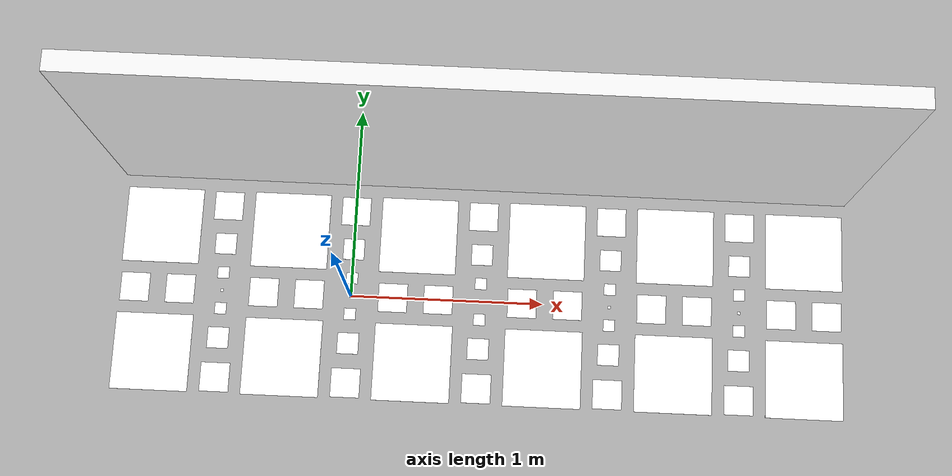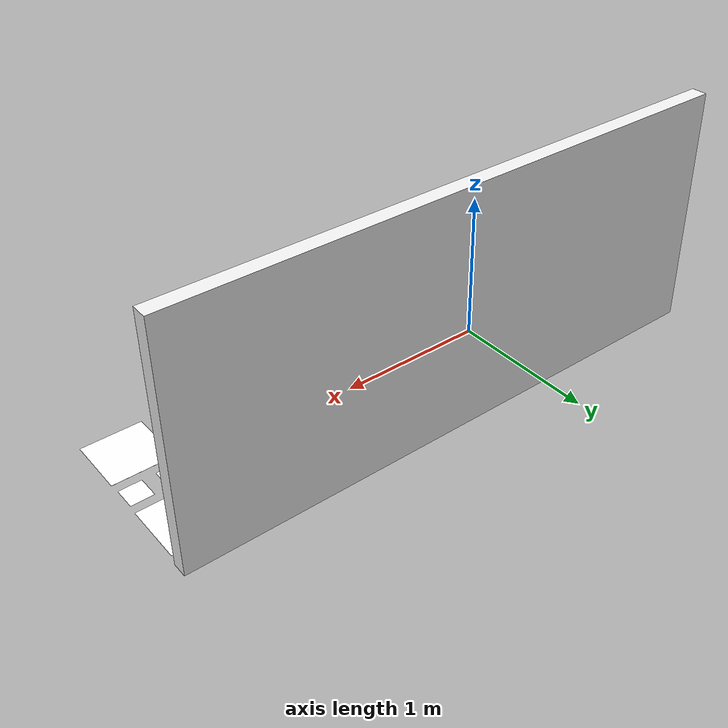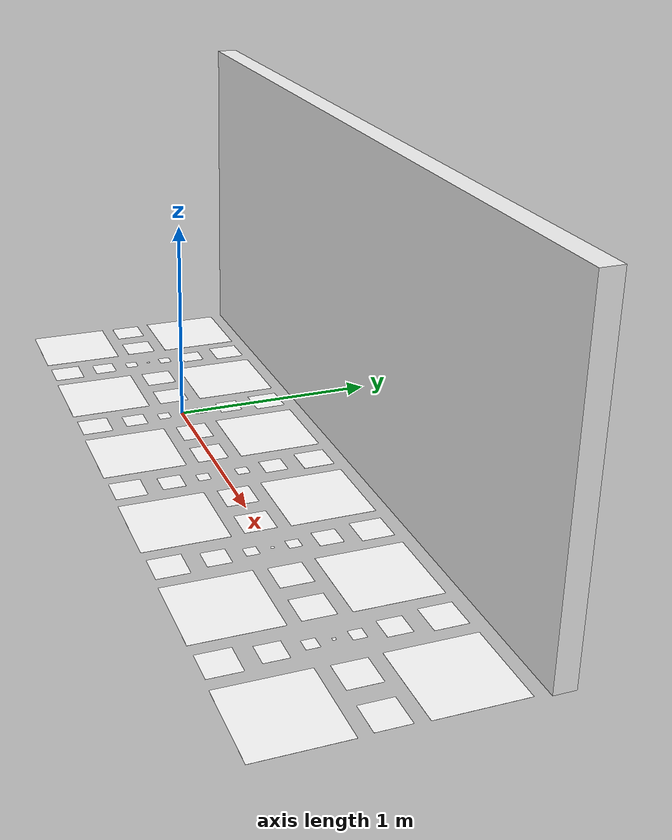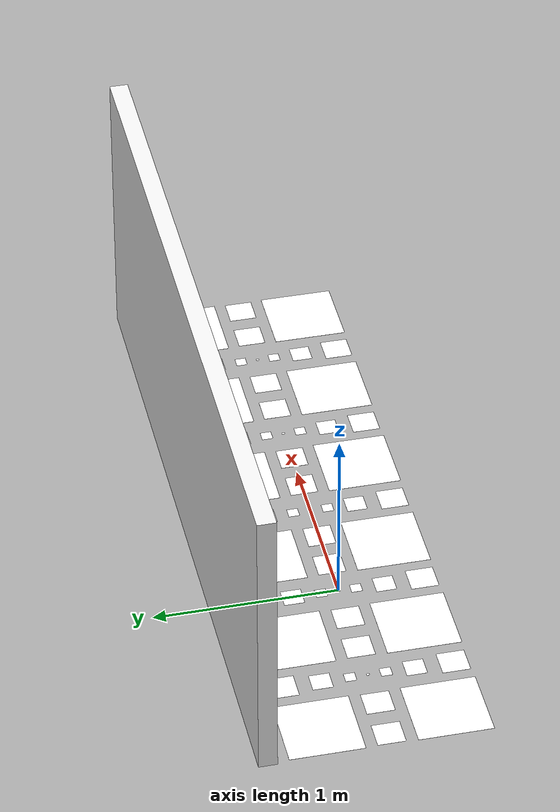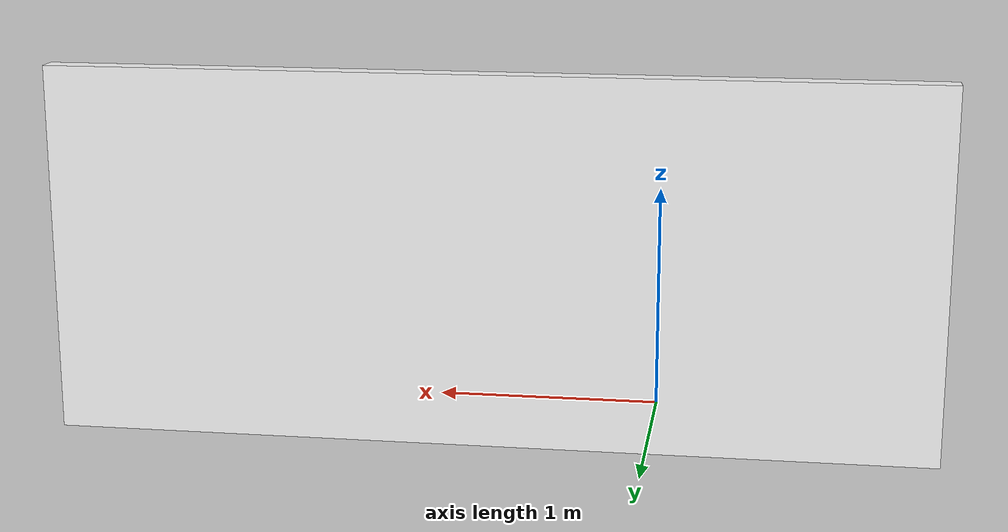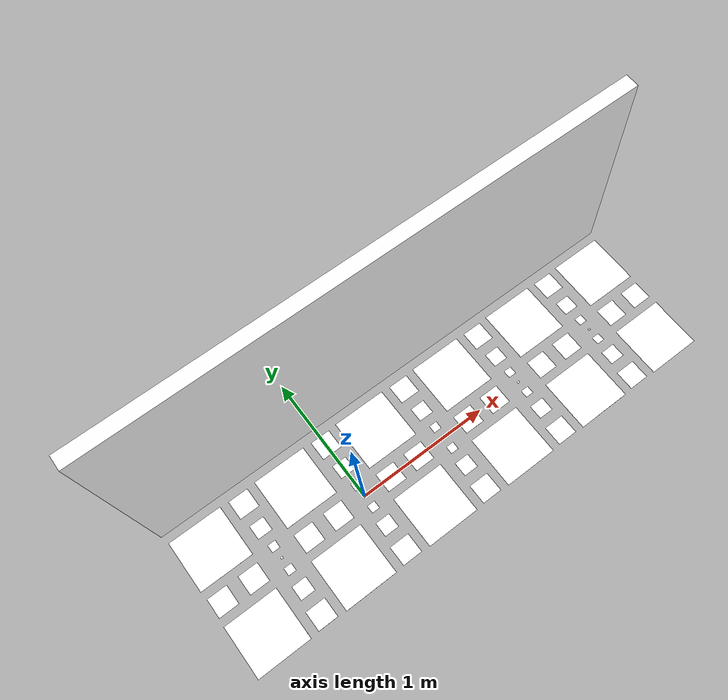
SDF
<sdf version="1.9">
 <world name="obrik_aruco_graffiti_wall">
  <plugin name="gz::sim::systems::Physics" filename="gz-sim-physics-system"/>
  <plugin name="gz::sim::systems::UserCommands" filename="gz-sim-user-commands-system"/>
  <plugin name="gz::sim::systems::SceneBroadcaster" filename="gz-sim-scene-broadcaster-system"/>
  <plugin name="gz::sim::systems::Contact" filename="gz-sim-contact-system"/>
  <plugin name="gz::sim::systems::Imu" filename="gz-sim-imu-system"/>
  <plugin name="gz::sim::systems::AirPressure" filename="gz-sim-air-pressure-system"/>
  <plugin name="gz::sim::systems::Magnetometer" filename="gz-sim-magnetometer-system"/>
  <plugin name="gz::sim::systems::ApplyLinkWrench" filename="gz-sim-apply-link-wrench-system"/>
  <plugin name="gz::sim::systems::NavSat" filename="gz-sim-navsat-system"/>
  <plugin name="gz::sim::systems::Sensors" filename="gz-sim-sensors-system">
   <render_engine>ogre2</render_engine>
  </plugin>
  <physics type="dart">
   <max_step_size>0.004</max_step_size>
   <real_time_factor>1.0</real_time_factor>
   <real_time_update_rate>250</real_time_update_rate>
   <dart><collision_detector>bullet</collision_detector></dart>
  </physics>
  <gravity>0 0 -9.8</gravity>
  <magnetic_field>6e-06 2.3e-05 -4.2e-05</magnetic_field>
  <atmosphere type="adiabatic"/>
  <scene>
   <grid>false</grid>
   <ambient>0.4 0.4 0.4 1</ambient>
   <background>0.7 0.7 0.7 1</background>
   <shadows>false</shadows>
  </scene>
  <light name="sunUTC" type="directional">
   <pose>0 0 500 0 0 0</pose>
   <cast_shadows>false</cast_shadows>
   <intensity>1.0</intensity>
   <direction>0.001 0.625 -0.78</direction>
   <diffuse>1 1 1 1</diffuse>
   <specular>0.271 0.271 0.271 1</specular>
   <attenuation><range>2000</range><linear>0</linear><constant>1</constant><quadratic>0</quadratic></attenuation>
   <spot><inner_angle>0</inner_angle><outer_angle>0</outer_angle><falloff>0</falloff></spot>
  </light>
  <spherical_coordinates>
   <surface_model>EARTH_WGS84</surface_model>
   <world_frame_orientation>ENU</world_frame_orientation>
   <latitude_deg>47.397971057728974</latitude_deg>
   <longitude_deg>8.546163739800146</longitude_deg>
   <elevation>0</elevation>
  </spherical_coordinates>
  <include><uri>model://obrik_aruco_map_4x4</uri></include>
  <model name="graffiti_paint_wall">
   <static>true</static>
   <pose>0.6734 0.65 0.80 0 0 0</pose>
   <link name="link">
    <collision name="collision"><geometry><box><size>3.8 0.1 1.6</size></box></geometry></collision>
    <visual name="visual">
     <cast_shadows>false</cast_shadows>
     <geometry><box><size>3.8 0.1 1.6</size></box></geometry>
     <material>
      <ambient>0.95 0.95 0.95 1</ambient>
      <diffuse>0.95 0.95 0.95 1</diffuse>
      <specular>0.05 0.05 0.05 1</specular>
     </material>
    </visual>
   </link>
  </model>
 </world>
</sdf>

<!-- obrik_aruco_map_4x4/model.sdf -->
<sdf version="1.9">
  <model name="obrik_aruco_map_4x4">
    <static>true</static>
    <link name="link">
        <visual name="marker_1">
          <pose>0.336700 0.336700 0.001000 0.000000 -0.000000 0.000000</pose>
          <cast_shadows>false</cast_shadows>
          <geometry>
            <plane>
              <normal>0 0 1</normal>
              <size>0.400000 0.400000</size>
            </plane>
          </geometry>
          <material>
            <diffuse>1 1 1 1</diffuse>
            <specular>0.1 0.1 0.1 1</specular>
            <pbr>
              <metal>
                <albedo_map>model://obrik_aruco_map_4x4/materials/textures/aruco_1.png</albedo_map>
                <emissive_map>model://obrik_aruco_map_4x4/materials/textures/aruco_1.png</emissive_map>
              </metal>
            </pbr>
          </material>
        </visual>
        <visual name="marker_2">
          <pose>-0.336700 -0.336700 0.001000 0.000000 -0.000000 0.000000</pose>
          <cast_shadows>false</cast_shadows>
          <geometry>
            <plane>
              <normal>0 0 1</normal>
              <size>0.400000 0.400000</size>
            </plane>
          </geometry>
          <material>
            <diffuse>1 1 1 1</diffuse>
            <specular>0.1 0.1 0.1 1</specular>
            <pbr>
              <metal>
                <albedo_map>model://obrik_aruco_map_4x4/materials/textures/aruco_2.png</albedo_map>
                <emissive_map>model://obrik_aruco_map_4x4/materials/textures/aruco_2.png</emissive_map>
              </metal>
            </pbr>
          </material>
        </visual>
        <visual name="marker_3">
          <pose>-0.336700 0.336700 0.001000 0.000000 -0.000000 0.000000</pose>
          <cast_shadows>false</cast_shadows>
          <geometry>
            <plane>
              <normal>0 0 1</normal>
              <size>0.400000 0.400000</size>
            </plane>
          </geometry>
          <material>
            <diffuse>1 1 1 1</diffuse>
            <specular>0.1 0.1 0.1 1</specular>
            <pbr>
              <metal>
                <albedo_map>model://obrik_aruco_map_4x4/materials/textures/aruco_3.png</albedo_map>
                <emissive_map>model://obrik_aruco_map_4x4/materials/textures/aruco_3.png</emissive_map>
              </metal>
            </pbr>
          </material>
        </visual>
        <visual name="marker_4">
          <pose>0.336700 -0.336700 0.001000 0.000000 -0.000000 0.000000</pose>
          <cast_shadows>false</cast_shadows>
          <geometry>
            <plane>
              <normal>0 0 1</normal>
              <size>0.400000 0.400000</size>
            </plane>
          </geometry>
          <material>
            <diffuse>1 1 1 1</diffuse>
            <specular>0.1 0.1 0.1 1</specular>
            <pbr>
              <metal>
                <albedo_map>model://obrik_aruco_map_4x4/materials/textures/aruco_4.png</albedo_map>
                <emissive_map>model://obrik_aruco_map_4x4/materials/textures/aruco_4.png</emissive_map>
              </metal>
            </pbr>
          </material>
        </visual>
        <visual name="marker_5">
          <pose>0.000000 0.095100 0.001000 0.000000 -0.000000 0.000000</pose>
          <cast_shadows>false</cast_shadows>
          <geometry>
            <plane>
              <normal>0 0 1</normal>
              <size>0.060000 0.060000</size>
            </plane>
          </geometry>
          <material>
            <diffuse>1 1 1 1</diffuse>
            <specular>0.1 0.1 0.1 1</specular>
            <pbr>
              <metal>
                <albedo_map>model://obrik_aruco_map_4x4/materials/textures/aruco_5.png</albedo_map>
                <emissive_map>model://obrik_aruco_map_4x4/materials/textures/aruco_5.png</emissive_map>
              </metal>
            </pbr>
          </material>
        </visual>
        <visual name="marker_6">
          <pose>0.000000 -0.095100 0.001000 0.000000 -0.000000 0.000000</pose>
          <cast_shadows>false</cast_shadows>
          <geometry>
            <plane>
              <normal>0 0 1</normal>
              <size>0.060000 0.060000</size>
            </plane>
          </geometry>
          <material>
            <diffuse>1 1 1 1</diffuse>
            <specular>0.1 0.1 0.1 1</specular>
            <pbr>
              <metal>
                <albedo_map>model://obrik_aruco_map_4x4/materials/textures/aruco_6.png</albedo_map>
                <emissive_map>model://obrik_aruco_map_4x4/materials/textures/aruco_6.png</emissive_map>
              </metal>
            </pbr>
          </material>
        </visual>
        <visual name="marker_7">
          <pose>0.000000 0.249500 0.001000 0.000000 -0.000000 0.000000</pose>
          <cast_shadows>false</cast_shadows>
          <geometry>
            <plane>
              <normal>0 0 1</normal>
              <size>0.110000 0.110000</size>
            </plane>
          </geometry>
          <material>
            <diffuse>1 1 1 1</diffuse>
            <specular>0.1 0.1 0.1 1</specular>
            <pbr>
              <metal>
                <albedo_map>model://obrik_aruco_map_4x4/materials/textures/aruco_7.png</albedo_map>
                <emissive_map>model://obrik_aruco_map_4x4/materials/textures/aruco_7.png</emissive_map>
              </metal>
            </pbr>
          </material>
        </visual>
        <visual name="marker_8">
          <pose>0.000000 -0.249500 0.001000 0.000000 -0.000000 0.000000</pose>
          <cast_shadows>false</cast_shadows>
          <geometry>
            <plane>
              <normal>0 0 1</normal>
              <size>0.110000 0.110000</size>
            </plane>
          </geometry>
          <material>
            <diffuse>1 1 1 1</diffuse>
            <specular>0.1 0.1 0.1 1</specular>
            <pbr>
              <metal>
                <albedo_map>model://obrik_aruco_map_4x4/materials/textures/aruco_8.png</albedo_map>
                <emissive_map>model://obrik_aruco_map_4x4/materials/textures/aruco_8.png</emissive_map>
              </metal>
            </pbr>
          </material>
        </visual>
        <visual name="marker_9">
          <pose>0.000000 0.455000 0.001000 0.000000 -0.000000 0.000000</pose>
          <cast_shadows>false</cast_shadows>
          <geometry>
            <plane>
              <normal>0 0 1</normal>
              <size>0.150000 0.150000</size>
            </plane>
          </geometry>
          <material>
            <diffuse>1 1 1 1</diffuse>
            <specular>0.1 0.1 0.1 1</specular>
            <pbr>
              <metal>
                <albedo_map>model://obrik_aruco_map_4x4/materials/textures/aruco_9.png</albedo_map>
                <emissive_map>model://obrik_aruco_map_4x4/materials/textures/aruco_9.png</emissive_map>
              </metal>
            </pbr>
          </material>
        </visual>
        <visual name="marker_10">
          <pose>0.000000 -0.455000 0.001000 0.000000 -0.000000 0.000000</pose>
          <cast_shadows>false</cast_shadows>
          <geometry>
            <plane>
              <normal>0 0 1</normal>
              <size>0.150000 0.150000</size>
            </plane>
          </geometry>
          <material>
            <diffuse>1 1 1 1</diffuse>
            <specular>0.1 0.1 0.1 1</specular>
            <pbr>
              <metal>
                <albedo_map>model://obrik_aruco_map_4x4/materials/textures/aruco_10.png</albedo_map>
                <emissive_map>model://obrik_aruco_map_4x4/materials/textures/aruco_10.png</emissive_map>
              </metal>
            </pbr>
          </material>
        </visual>
        <visual name="marker_11">
          <pose>0.455000 0.000000 0.001000 0.000000 -0.000000 0.000000</pose>
          <cast_shadows>false</cast_shadows>
          <geometry>
            <plane>
              <normal>0 0 1</normal>
              <size>0.150000 0.150000</size>
            </plane>
          </geometry>
          <material>
            <diffuse>1 1 1 1</diffuse>
            <specular>0.1 0.1 0.1 1</specular>
            <pbr>
              <metal>
                <albedo_map>model://obrik_aruco_map_4x4/materials/textures/aruco_11.png</albedo_map>
                <emissive_map>model://obrik_aruco_map_4x4/materials/textures/aruco_11.png</emissive_map>
              </metal>
            </pbr>
          </material>
        </visual>
        <visual name="marker_12">
          <pose>0.218400 0.000000 0.001000 0.000000 -0.000000 0.000000</pose>
          <cast_shadows>false</cast_shadows>
          <geometry>
            <plane>
              <normal>0 0 1</normal>
              <size>0.150000 0.150000</size>
            </plane>
          </geometry>
          <material>
            <diffuse>1 1 1 1</diffuse>
            <specular>0.1 0.1 0.1 1</specular>
            <pbr>
              <metal>
                <albedo_map>model://obrik_aruco_map_4x4/materials/textures/aruco_12.png</albedo_map>
                <emissive_map>model://obrik_aruco_map_4x4/materials/textures/aruco_12.png</emissive_map>
              </metal>
            </pbr>
          </material>
        </visual>
        <visual name="marker_13">
          <pose>-0.455000 0.000000 0.001000 0.000000 -0.000000 0.000000</pose>
          <cast_shadows>false</cast_shadows>
          <geometry>
            <plane>
              <normal>0 0 1</normal>
              <size>0.150000 0.150000</size>
            </plane>
          </geometry>
          <material>
            <diffuse>1 1 1 1</diffuse>
            <specular>0.1 0.1 0.1 1</specular>
            <pbr>
              <metal>
                <albedo_map>model://obrik_aruco_map_4x4/materials/textures/aruco_13.png</albedo_map>
                <emissive_map>model://obrik_aruco_map_4x4/materials/textures/aruco_13.png</emissive_map>
              </metal>
            </pbr>
          </material>
        </visual>
        <visual name="marker_14">
          <pose>-0.218400 0.000000 0.001000 0.000000 -0.000000 0.000000</pose>
          <cast_shadows>false</cast_shadows>
          <geometry>
            <plane>
              <normal>0 0 1</normal>
              <size>0.150000 0.150000</size>
            </plane>
          </geometry>
          <material>
            <diffuse>1 1 1 1</diffuse>
            <specular>0.1 0.1 0.1 1</specular>
            <pbr>
              <metal>
                <albedo_map>model://obrik_aruco_map_4x4/materials/textures/aruco_14.png</albedo_map>
                <emissive_map>model://obrik_aruco_map_4x4/materials/textures/aruco_14.png</emissive_map>
              </metal>
            </pbr>
          </material>
        </visual>
        <visual name="marker_15">
          <pose>0.000000 0.000000 0.001000 0.000000 -0.000000 0.000000</pose>
          <cast_shadows>false</cast_shadows>
          <geometry>
            <plane>
              <normal>0 0 1</normal>
              <size>0.015000 0.015000</size>
            </plane>
          </geometry>
          <material>
            <diffuse>1 1 1 1</diffuse>
            <specular>0.1 0.1 0.1 1</specular>
            <pbr>
              <metal>
                <albedo_map>model://obrik_aruco_map_4x4/materials/textures/aruco_15.png</albedo_map>
                <emissive_map>model://obrik_aruco_map_4x4/materials/textures/aruco_15.png</emissive_map>
              </metal>
            </pbr>
          </material>
        </visual>
        <visual name="marker_16">
          <pose>1.010100 0.336700 0.001000 0.000000 -0.000000 0.000000</pose>
          <cast_shadows>false</cast_shadows>
          <geometry>
            <plane>
              <normal>0 0 1</normal>
              <size>0.400000 0.400000</size>
            </plane>
          </geometry>
          <material>
            <diffuse>1 1 1 1</diffuse>
            <specular>0.1 0.1 0.1 1</specular>
            <pbr>
              <metal>
                <albedo_map>model://obrik_aruco_map_4x4/materials/textures/aruco_16.png</albedo_map>
                <emissive_map>model://obrik_aruco_map_4x4/materials/textures/aruco_16.png</emissive_map>
              </metal>
            </pbr>
          </material>
        </visual>
        <visual name="marker_18">
          <pose>1.010100 -0.336700 0.001000 0.000000 -0.000000 0.000000</pose>
          <cast_shadows>false</cast_shadows>
          <geometry>
            <plane>
              <normal>0 0 1</normal>
              <size>0.400000 0.400000</size>
            </plane>
          </geometry>
          <material>
            <diffuse>1 1 1 1</diffuse>
            <specular>0.1 0.1 0.1 1</specular>
            <pbr>
              <metal>
                <albedo_map>model://obrik_aruco_map_4x4/materials/textures/aruco_18.png</albedo_map>
                <emissive_map>model://obrik_aruco_map_4x4/materials/textures/aruco_18.png</emissive_map>
              </metal>
            </pbr>
          </material>
        </visual>
        <visual name="marker_20">
          <pose>0.673400 0.095100 0.001000 0.000000 -0.000000 0.000000</pose>
          <cast_shadows>false</cast_shadows>
          <geometry>
            <plane>
              <normal>0 0 1</normal>
              <size>0.060000 0.060000</size>
            </plane>
          </geometry>
          <material>
            <diffuse>1 1 1 1</diffuse>
            <specular>0.1 0.1 0.1 1</specular>
            <pbr>
              <metal>
                <albedo_map>model://obrik_aruco_map_4x4/materials/textures/aruco_20.png</albedo_map>
                <emissive_map>model://obrik_aruco_map_4x4/materials/textures/aruco_20.png</emissive_map>
              </metal>
            </pbr>
          </material>
        </visual>
        <visual name="marker_21">
          <pose>0.673400 -0.095100 0.001000 0.000000 -0.000000 0.000000</pose>
          <cast_shadows>false</cast_shadows>
          <geometry>
            <plane>
              <normal>0 0 1</normal>
              <size>0.060000 0.060000</size>
            </plane>
          </geometry>
          <material>
            <diffuse>1 1 1 1</diffuse>
            <specular>0.1 0.1 0.1 1</specular>
            <pbr>
              <metal>
                <albedo_map>model://obrik_aruco_map_4x4/materials/textures/aruco_21.png</albedo_map>
                <emissive_map>model://obrik_aruco_map_4x4/materials/textures/aruco_21.png</emissive_map>
              </metal>
            </pbr>
          </material>
        </visual>
        <visual name="marker_22">
          <pose>0.673400 0.249500 0.001000 0.000000 -0.000000 0.000000</pose>
          <cast_shadows>false</cast_shadows>
          <geometry>
            <plane>
              <normal>0 0 1</normal>
              <size>0.110000 0.110000</size>
            </plane>
          </geometry>
          <material>
            <diffuse>1 1 1 1</diffuse>
            <specular>0.1 0.1 0.1 1</specular>
            <pbr>
              <metal>
                <albedo_map>model://obrik_aruco_map_4x4/materials/textures/aruco_22.png</albedo_map>
                <emissive_map>model://obrik_aruco_map_4x4/materials/textures/aruco_22.png</emissive_map>
              </metal>
            </pbr>
          </material>
        </visual>
        <visual name="marker_23">
          <pose>0.673400 -0.249500 0.001000 0.000000 -0.000000 0.000000</pose>
          <cast_shadows>false</cast_shadows>
          <geometry>
            <plane>
              <normal>0 0 1</normal>
              <size>0.110000 0.110000</size>
            </plane>
          </geometry>
          <material>
            <diffuse>1 1 1 1</diffuse>
            <specular>0.1 0.1 0.1 1</specular>
            <pbr>
              <metal>
                <albedo_map>model://obrik_aruco_map_4x4/materials/textures/aruco_23.png</albedo_map>
                <emissive_map>model://obrik_aruco_map_4x4/materials/textures/aruco_23.png</emissive_map>
              </metal>
            </pbr>
          </material>
        </visual>
        <visual name="marker_24">
          <pose>0.673400 0.455000 0.001000 0.000000 -0.000000 0.000000</pose>
          <cast_shadows>false</cast_shadows>
          <geometry>
            <plane>
              <normal>0 0 1</normal>
              <size>0.150000 0.150000</size>
            </plane>
          </geometry>
          <material>
            <diffuse>1 1 1 1</diffuse>
            <specular>0.1 0.1 0.1 1</specular>
            <pbr>
              <metal>
                <albedo_map>model://obrik_aruco_map_4x4/materials/textures/aruco_24.png</albedo_map>
                <emissive_map>model://obrik_aruco_map_4x4/materials/textures/aruco_24.png</emissive_map>
              </metal>
            </pbr>
          </material>
        </visual>
        <visual name="marker_25">
          <pose>0.673400 -0.455000 0.001000 0.000000 -0.000000 0.000000</pose>
          <cast_shadows>false</cast_shadows>
          <geometry>
            <plane>
              <normal>0 0 1</normal>
              <size>0.150000 0.150000</size>
            </plane>
          </geometry>
          <material>
            <diffuse>1 1 1 1</diffuse>
            <specular>0.1 0.1 0.1 1</specular>
            <pbr>
              <metal>
                <albedo_map>model://obrik_aruco_map_4x4/materials/textures/aruco_25.png</albedo_map>
                <emissive_map>model://obrik_aruco_map_4x4/materials/textures/aruco_25.png</emissive_map>
              </metal>
            </pbr>
          </material>
        </visual>
        <visual name="marker_26">
          <pose>1.128400 0.000000 0.001000 0.000000 -0.000000 0.000000</pose>
          <cast_shadows>false</cast_shadows>
          <geometry>
            <plane>
              <normal>0 0 1</normal>
              <size>0.150000 0.150000</size>
            </plane>
          </geometry>
          <material>
            <diffuse>1 1 1 1</diffuse>
            <specular>0.1 0.1 0.1 1</specular>
            <pbr>
              <metal>
                <albedo_map>model://obrik_aruco_map_4x4/materials/textures/aruco_26.png</albedo_map>
                <emissive_map>model://obrik_aruco_map_4x4/materials/textures/aruco_26.png</emissive_map>
              </metal>
            </pbr>
          </material>
        </visual>
        <visual name="marker_27">
          <pose>0.891800 0.000000 0.001000 0.000000 -0.000000 0.000000</pose>
          <cast_shadows>false</cast_shadows>
          <geometry>
            <plane>
              <normal>0 0 1</normal>
              <size>0.150000 0.150000</size>
            </plane>
          </geometry>
          <material>
            <diffuse>1 1 1 1</diffuse>
            <specular>0.1 0.1 0.1 1</specular>
            <pbr>
              <metal>
                <albedo_map>model://obrik_aruco_map_4x4/materials/textures/aruco_27.png</albedo_map>
                <emissive_map>model://obrik_aruco_map_4x4/materials/textures/aruco_27.png</emissive_map>
              </metal>
            </pbr>
          </material>
        </visual>
        <visual name="marker_28">
          <pose>0.673400 0.000000 0.001000 0.000000 -0.000000 0.000000</pose>
          <cast_shadows>false</cast_shadows>
          <geometry>
            <plane>
              <normal>0 0 1</normal>
              <size>0.015000 0.015000</size>
            </plane>
          </geometry>
          <material>
            <diffuse>1 1 1 1</diffuse>
            <specular>0.1 0.1 0.1 1</specular>
            <pbr>
              <metal>
                <albedo_map>model://obrik_aruco_map_4x4/materials/textures/aruco_28.png</albedo_map>
                <emissive_map>model://obrik_aruco_map_4x4/materials/textures/aruco_28.png</emissive_map>
              </metal>
            </pbr>
          </material>
        </visual>
        <visual name="marker_29">
          <pose>-1.010100 0.336700 0.001000 0.000000 -0.000000 0.000000</pose>
          <cast_shadows>false</cast_shadows>
          <geometry>
            <plane>
              <normal>0 0 1</normal>
              <size>0.400000 0.400000</size>
            </plane>
          </geometry>
          <material>
            <diffuse>1 1 1 1</diffuse>
            <specular>0.1 0.1 0.1 1</specular>
            <pbr>
              <metal>
                <albedo_map>model://obrik_aruco_map_4x4/materials/textures/aruco_29.png</albedo_map>
                <emissive_map>model://obrik_aruco_map_4x4/materials/textures/aruco_29.png</emissive_map>
              </metal>
            </pbr>
          </material>
        </visual>
        <visual name="marker_94">
          <pose>-1.010100 -0.336700 0.001000 0.000000 -0.000000 0.000000</pose>
          <cast_shadows>false</cast_shadows>
          <geometry>
            <plane>
              <normal>0 0 1</normal>
              <size>0.400000 0.400000</size>
            </plane>
          </geometry>
          <material>
            <diffuse>1 1 1 1</diffuse>
            <specular>0.1 0.1 0.1 1</specular>
            <pbr>
              <metal>
                <albedo_map>model://obrik_aruco_map_4x4/materials/textures/aruco_94.png</albedo_map>
                <emissive_map>model://obrik_aruco_map_4x4/materials/textures/aruco_94.png</emissive_map>
              </metal>
            </pbr>
          </material>
        </visual>
        <visual name="marker_31">
          <pose>-0.673400 0.095100 0.001000 0.000000 -0.000000 0.000000</pose>
          <cast_shadows>false</cast_shadows>
          <geometry>
            <plane>
              <normal>0 0 1</normal>
              <size>0.060000 0.060000</size>
            </plane>
          </geometry>
          <material>
            <diffuse>1 1 1 1</diffuse>
            <specular>0.1 0.1 0.1 1</specular>
            <pbr>
              <metal>
                <albedo_map>model://obrik_aruco_map_4x4/materials/textures/aruco_31.png</albedo_map>
                <emissive_map>model://obrik_aruco_map_4x4/materials/textures/aruco_31.png</emissive_map>
              </metal>
            </pbr>
          </material>
        </visual>
        <visual name="marker_32">
          <pose>-0.673400 -0.095100 0.001000 0.000000 -0.000000 0.000000</pose>
          <cast_shadows>false</cast_shadows>
          <geometry>
            <plane>
              <normal>0 0 1</normal>
              <size>0.060000 0.060000</size>
            </plane>
          </geometry>
          <material>
            <diffuse>1 1 1 1</diffuse>
            <specular>0.1 0.1 0.1 1</specular>
            <pbr>
              <metal>
                <albedo_map>model://obrik_aruco_map_4x4/materials/textures/aruco_32.png</albedo_map>
                <emissive_map>model://obrik_aruco_map_4x4/materials/textures/aruco_32.png</emissive_map>
              </metal>
            </pbr>
          </material>
        </visual>
        <visual name="marker_33">
          <pose>-0.673400 0.249500 0.001000 0.000000 -0.000000 0.000000</pose>
          <cast_shadows>false</cast_shadows>
          <geometry>
            <plane>
              <normal>0 0 1</normal>
              <size>0.110000 0.110000</size>
            </plane>
          </geometry>
          <material>
            <diffuse>1 1 1 1</diffuse>
            <specular>0.1 0.1 0.1 1</specular>
            <pbr>
              <metal>
                <albedo_map>model://obrik_aruco_map_4x4/materials/textures/aruco_33.png</albedo_map>
                <emissive_map>model://obrik_aruco_map_4x4/materials/textures/aruco_33.png</emissive_map>
              </metal>
            </pbr>
          </material>
        </visual>
        <visual name="marker_34">
          <pose>-0.673400 -0.249500 0.001000 0.000000 -0.000000 0.000000</pose>
          <cast_shadows>false</cast_shadows>
          <geometry>
            <plane>
              <normal>0 0 1</normal>
              <size>0.110000 0.110000</size>
            </plane>
          </geometry>
          <material>
            <diffuse>1 1 1 1</diffuse>
            <specular>0.1 0.1 0.1 1</specular>
            <pbr>
              <metal>
                <albedo_map>model://obrik_aruco_map_4x4/materials/textures/aruco_34.png</albedo_map>
                <emissive_map>model://obrik_aruco_map_4x4/materials/textures/aruco_34.png</emissive_map>
              </metal>
            </pbr>
          </material>
        </visual>
        <visual name="marker_35">
          <pose>-0.673400 0.455000 0.001000 0.000000 -0.000000 0.000000</pose>
          <cast_shadows>false</cast_shadows>
          <geometry>
            <plane>
              <normal>0 0 1</normal>
              <size>0.150000 0.150000</size>
            </plane>
          </geometry>
          <material>
            <diffuse>1 1 1 1</diffuse>
            <specular>0.1 0.1 0.1 1</specular>
            <pbr>
              <metal>
                <albedo_map>model://obrik_aruco_map_4x4/materials/textures/aruco_35.png</albedo_map>
                <emissive_map>model://obrik_aruco_map_4x4/materials/textures/aruco_35.png</emissive_map>
              </metal>
            </pbr>
          </material>
        </visual>
        <visual name="marker_36">
          <pose>-0.673400 -0.455000 0.001000 0.000000 -0.000000 0.000000</pose>
          <cast_shadows>false</cast_shadows>
          <geometry>
            <plane>
              <normal>0 0 1</normal>
              <size>0.150000 0.150000</size>
            </plane>
          </geometry>
          <material>
            <diffuse>1 1 1 1</diffuse>
            <specular>0.1 0.1 0.1 1</specular>
            <pbr>
              <metal>
                <albedo_map>model://obrik_aruco_map_4x4/materials/textures/aruco_36.png</albedo_map>
                <emissive_map>model://obrik_aruco_map_4x4/materials/textures/aruco_36.png</emissive_map>
              </metal>
            </pbr>
          </material>
        </visual>
        <visual name="marker_92">
          <pose>-1.128400 0.000000 0.001000 0.000000 -0.000000 0.000000</pose>
          <cast_shadows>false</cast_shadows>
          <geometry>
            <plane>
              <normal>0 0 1</normal>
              <size>0.150000 0.150000</size>
            </plane>
          </geometry>
          <material>
            <diffuse>1 1 1 1</diffuse>
            <specular>0.1 0.1 0.1 1</specular>
            <pbr>
              <metal>
                <albedo_map>model://obrik_aruco_map_4x4/materials/textures/aruco_92.png</albedo_map>
                <emissive_map>model://obrik_aruco_map_4x4/materials/textures/aruco_92.png</emissive_map>
              </metal>
            </pbr>
          </material>
        </visual>
        <visual name="marker_38">
          <pose>-0.891800 0.000000 0.001000 0.000000 -0.000000 0.000000</pose>
          <cast_shadows>false</cast_shadows>
          <geometry>
            <plane>
              <normal>0 0 1</normal>
              <size>0.150000 0.150000</size>
            </plane>
          </geometry>
          <material>
            <diffuse>1 1 1 1</diffuse>
            <specular>0.1 0.1 0.1 1</specular>
            <pbr>
              <metal>
                <albedo_map>model://obrik_aruco_map_4x4/materials/textures/aruco_38.png</albedo_map>
                <emissive_map>model://obrik_aruco_map_4x4/materials/textures/aruco_38.png</emissive_map>
              </metal>
            </pbr>
          </material>
        </visual>
        <visual name="marker_39">
          <pose>-0.673400 0.000000 0.001000 0.000000 -0.000000 0.000000</pose>
          <cast_shadows>false</cast_shadows>
          <geometry>
            <plane>
              <normal>0 0 1</normal>
              <size>0.015000 0.015000</size>
            </plane>
          </geometry>
          <material>
            <diffuse>1 1 1 1</diffuse>
            <specular>0.1 0.1 0.1 1</specular>
            <pbr>
              <metal>
                <albedo_map>model://obrik_aruco_map_4x4/materials/textures/aruco_39.png</albedo_map>
                <emissive_map>model://obrik_aruco_map_4x4/materials/textures/aruco_39.png</emissive_map>
              </metal>
            </pbr>
          </material>
        </visual>
        <visual name="marker_40">
          <pose>1.683500 0.336700 0.001000 0.000000 -0.000000 0.000000</pose>
          <cast_shadows>false</cast_shadows>
          <geometry>
            <plane>
              <normal>0 0 1</normal>
              <size>0.400000 0.400000</size>
            </plane>
          </geometry>
          <material>
            <diffuse>1 1 1 1</diffuse>
            <specular>0.1 0.1 0.1 1</specular>
            <pbr>
              <metal>
                <albedo_map>model://obrik_aruco_map_4x4/materials/textures/aruco_40.png</albedo_map>
                <emissive_map>model://obrik_aruco_map_4x4/materials/textures/aruco_40.png</emissive_map>
              </metal>
            </pbr>
          </material>
        </visual>
        <visual name="marker_97">
          <pose>1.683500 -0.336700 0.001000 0.000000 -0.000000 0.000000</pose>
          <cast_shadows>false</cast_shadows>
          <geometry>
            <plane>
              <normal>0 0 1</normal>
              <size>0.400000 0.400000</size>
            </plane>
          </geometry>
          <material>
            <diffuse>1 1 1 1</diffuse>
            <specular>0.1 0.1 0.1 1</specular>
            <pbr>
              <metal>
                <albedo_map>model://obrik_aruco_map_4x4/materials/textures/aruco_97.png</albedo_map>
                <emissive_map>model://obrik_aruco_map_4x4/materials/textures/aruco_97.png</emissive_map>
              </metal>
            </pbr>
          </material>
        </visual>
        <visual name="marker_42">
          <pose>1.346800 0.095100 0.001000 0.000000 -0.000000 0.000000</pose>
          <cast_shadows>false</cast_shadows>
          <geometry>
            <plane>
              <normal>0 0 1</normal>
              <size>0.060000 0.060000</size>
            </plane>
          </geometry>
          <material>
            <diffuse>1 1 1 1</diffuse>
            <specular>0.1 0.1 0.1 1</specular>
            <pbr>
              <metal>
                <albedo_map>model://obrik_aruco_map_4x4/materials/textures/aruco_42.png</albedo_map>
                <emissive_map>model://obrik_aruco_map_4x4/materials/textures/aruco_42.png</emissive_map>
              </metal>
            </pbr>
          </material>
        </visual>
        <visual name="marker_43">
          <pose>1.346800 -0.095100 0.001000 0.000000 -0.000000 0.000000</pose>
          <cast_shadows>false</cast_shadows>
          <geometry>
            <plane>
              <normal>0 0 1</normal>
              <size>0.060000 0.060000</size>
            </plane>
          </geometry>
          <material>
            <diffuse>1 1 1 1</diffuse>
            <specular>0.1 0.1 0.1 1</specular>
            <pbr>
              <metal>
                <albedo_map>model://obrik_aruco_map_4x4/materials/textures/aruco_43.png</albedo_map>
                <emissive_map>model://obrik_aruco_map_4x4/materials/textures/aruco_43.png</emissive_map>
              </metal>
            </pbr>
          </material>
        </visual>
        <visual name="marker_44">
          <pose>1.346800 0.249500 0.001000 0.000000 -0.000000 0.000000</pose>
          <cast_shadows>false</cast_shadows>
          <geometry>
            <plane>
              <normal>0 0 1</normal>
              <size>0.110000 0.110000</size>
            </plane>
          </geometry>
          <material>
            <diffuse>1 1 1 1</diffuse>
            <specular>0.1 0.1 0.1 1</specular>
            <pbr>
              <metal>
                <albedo_map>model://obrik_aruco_map_4x4/materials/textures/aruco_44.png</albedo_map>
                <emissive_map>model://obrik_aruco_map_4x4/materials/textures/aruco_44.png</emissive_map>
              </metal>
            </pbr>
          </material>
        </visual>
        <visual name="marker_45">
          <pose>1.346800 -0.249500 0.001000 0.000000 -0.000000 0.000000</pose>
          <cast_shadows>false</cast_shadows>
          <geometry>
            <plane>
              <normal>0 0 1</normal>
              <size>0.110000 0.110000</size>
            </plane>
          </geometry>
          <material>
            <diffuse>1 1 1 1</diffuse>
            <specular>0.1 0.1 0.1 1</specular>
            <pbr>
              <metal>
                <albedo_map>model://obrik_aruco_map_4x4/materials/textures/aruco_45.png</albedo_map>
                <emissive_map>model://obrik_aruco_map_4x4/materials/textures/aruco_45.png</emissive_map>
              </metal>
            </pbr>
          </material>
        </visual>
        <visual name="marker_46">
          <pose>1.346800 0.455000 0.001000 0.000000 -0.000000 0.000000</pose>
          <cast_shadows>false</cast_shadows>
          <geometry>
            <plane>
              <normal>0 0 1</normal>
              <size>0.150000 0.150000</size>
            </plane>
          </geometry>
          <material>
            <diffuse>1 1 1 1</diffuse>
            <specular>0.1 0.1 0.1 1</specular>
            <pbr>
              <metal>
                <albedo_map>model://obrik_aruco_map_4x4/materials/textures/aruco_46.png</albedo_map>
                <emissive_map>model://obrik_aruco_map_4x4/materials/textures/aruco_46.png</emissive_map>
              </metal>
            </pbr>
          </material>
        </visual>
        <visual name="marker_47">
          <pose>1.346800 -0.455000 0.001000 0.000000 -0.000000 0.000000</pose>
          <cast_shadows>false</cast_shadows>
          <geometry>
            <plane>
              <normal>0 0 1</normal>
              <size>0.150000 0.150000</size>
            </plane>
          </geometry>
          <material>
            <diffuse>1 1 1 1</diffuse>
            <specular>0.1 0.1 0.1 1</specular>
            <pbr>
              <metal>
                <albedo_map>model://obrik_aruco_map_4x4/materials/textures/aruco_47.png</albedo_map>
                <emissive_map>model://obrik_aruco_map_4x4/materials/textures/aruco_47.png</emissive_map>
              </metal>
            </pbr>
          </material>
        </visual>
        <visual name="marker_48">
          <pose>1.565200 0.000000 0.001000 0.000000 -0.000000 0.000000</pose>
          <cast_shadows>false</cast_shadows>
          <geometry>
            <plane>
              <normal>0 0 1</normal>
              <size>0.150000 0.150000</size>
            </plane>
          </geometry>
          <material>
            <diffuse>1 1 1 1</diffuse>
            <specular>0.1 0.1 0.1 1</specular>
            <pbr>
              <metal>
                <albedo_map>model://obrik_aruco_map_4x4/materials/textures/aruco_48.png</albedo_map>
                <emissive_map>model://obrik_aruco_map_4x4/materials/textures/aruco_48.png</emissive_map>
              </metal>
            </pbr>
          </material>
        </visual>
        <visual name="marker_49">
          <pose>1.801800 0.000000 0.001000 0.000000 -0.000000 0.000000</pose>
          <cast_shadows>false</cast_shadows>
          <geometry>
            <plane>
              <normal>0 0 1</normal>
              <size>0.150000 0.150000</size>
            </plane>
          </geometry>
          <material>
            <diffuse>1 1 1 1</diffuse>
            <specular>0.1 0.1 0.1 1</specular>
            <pbr>
              <metal>
                <albedo_map>model://obrik_aruco_map_4x4/materials/textures/aruco_49.png</albedo_map>
                <emissive_map>model://obrik_aruco_map_4x4/materials/textures/aruco_49.png</emissive_map>
              </metal>
            </pbr>
          </material>
        </visual>
        <visual name="marker_50">
          <pose>1.346800 0.000000 0.001000 0.000000 -0.000000 0.000000</pose>
          <cast_shadows>false</cast_shadows>
          <geometry>
            <plane>
              <normal>0 0 1</normal>
              <size>0.015000 0.015000</size>
            </plane>
          </geometry>
          <material>
            <diffuse>1 1 1 1</diffuse>
            <specular>0.1 0.1 0.1 1</specular>
            <pbr>
              <metal>
                <albedo_map>model://obrik_aruco_map_4x4/materials/textures/aruco_50.png</albedo_map>
                <emissive_map>model://obrik_aruco_map_4x4/materials/textures/aruco_50.png</emissive_map>
              </metal>
            </pbr>
          </material>
        </visual>
        <visual name="marker_51">
          <pose>2.356900 0.336700 0.001000 0.000000 -0.000000 0.000000</pose>
          <cast_shadows>false</cast_shadows>
          <geometry>
            <plane>
              <normal>0 0 1</normal>
              <size>0.400000 0.400000</size>
            </plane>
          </geometry>
          <material>
            <diffuse>1 1 1 1</diffuse>
            <specular>0.1 0.1 0.1 1</specular>
            <pbr>
              <metal>
                <albedo_map>model://obrik_aruco_map_4x4/materials/textures/aruco_51.png</albedo_map>
                <emissive_map>model://obrik_aruco_map_4x4/materials/textures/aruco_51.png</emissive_map>
              </metal>
            </pbr>
          </material>
        </visual>
        <visual name="marker_52">
          <pose>2.356900 -0.336700 0.001000 0.000000 -0.000000 0.000000</pose>
          <cast_shadows>false</cast_shadows>
          <geometry>
            <plane>
              <normal>0 0 1</normal>
              <size>0.400000 0.400000</size>
            </plane>
          </geometry>
          <material>
            <diffuse>1 1 1 1</diffuse>
            <specular>0.1 0.1 0.1 1</specular>
            <pbr>
              <metal>
                <albedo_map>model://obrik_aruco_map_4x4/materials/textures/aruco_52.png</albedo_map>
                <emissive_map>model://obrik_aruco_map_4x4/materials/textures/aruco_52.png</emissive_map>
              </metal>
            </pbr>
          </material>
        </visual>
        <visual name="marker_53">
          <pose>2.020200 0.095100 0.001000 0.000000 -0.000000 0.000000</pose>
          <cast_shadows>false</cast_shadows>
          <geometry>
            <plane>
              <normal>0 0 1</normal>
              <size>0.060000 0.060000</size>
            </plane>
          </geometry>
          <material>
            <diffuse>1 1 1 1</diffuse>
            <specular>0.1 0.1 0.1 1</specular>
            <pbr>
              <metal>
                <albedo_map>model://obrik_aruco_map_4x4/materials/textures/aruco_53.png</albedo_map>
                <emissive_map>model://obrik_aruco_map_4x4/materials/textures/aruco_53.png</emissive_map>
              </metal>
            </pbr>
          </material>
        </visual>
        <visual name="marker_54">
          <pose>2.020200 -0.095100 0.001000 0.000000 -0.000000 0.000000</pose>
          <cast_shadows>false</cast_shadows>
          <geometry>
            <plane>
              <normal>0 0 1</normal>
              <size>0.060000 0.060000</size>
            </plane>
          </geometry>
          <material>
            <diffuse>1 1 1 1</diffuse>
            <specular>0.1 0.1 0.1 1</specular>
            <pbr>
              <metal>
                <albedo_map>model://obrik_aruco_map_4x4/materials/textures/aruco_54.png</albedo_map>
                <emissive_map>model://obrik_aruco_map_4x4/materials/textures/aruco_54.png</emissive_map>
              </metal>
            </pbr>
          </material>
        </visual>
        <visual name="marker_55">
          <pose>2.020200 0.249500 0.001000 0.000000 -0.000000 0.000000</pose>
          <cast_shadows>false</cast_shadows>
          <geometry>
            <plane>
              <normal>0 0 1</normal>
              <size>0.110000 0.110000</size>
            </plane>
          </geometry>
          <material>
            <diffuse>1 1 1 1</diffuse>
            <specular>0.1 0.1 0.1 1</specular>
            <pbr>
              <metal>
                <albedo_map>model://obrik_aruco_map_4x4/materials/textures/aruco_55.png</albedo_map>
                <emissive_map>model://obrik_aruco_map_4x4/materials/textures/aruco_55.png</emissive_map>
              </metal>
            </pbr>
          </material>
        </visual>
        <visual name="marker_56">
          <pose>2.020200 -0.249500 0.001000 0.000000 -0.000000 0.000000</pose>
          <cast_shadows>false</cast_shadows>
          <geometry>
            <plane>
              <normal>0 0 1</normal>
              <size>0.110000 0.110000</size>
            </plane>
          </geometry>
          <material>
            <diffuse>1 1 1 1</diffuse>
            <specular>0.1 0.1 0.1 1</specular>
            <pbr>
              <metal>
                <albedo_map>model://obrik_aruco_map_4x4/materials/textures/aruco_56.png</albedo_map>
                <emissive_map>model://obrik_aruco_map_4x4/materials/textures/aruco_56.png</emissive_map>
              </metal>
            </pbr>
          </material>
        </visual>
        <visual name="marker_57">
          <pose>2.020200 0.455000 0.001000 0.000000 -0.000000 0.000000</pose>
          <cast_shadows>false</cast_shadows>
          <geometry>
            <plane>
              <normal>0 0 1</normal>
              <size>0.150000 0.150000</size>
            </plane>
          </geometry>
          <material>
            <diffuse>1 1 1 1</diffuse>
            <specular>0.1 0.1 0.1 1</specular>
            <pbr>
              <metal>
                <albedo_map>model://obrik_aruco_map_4x4/materials/textures/aruco_57.png</albedo_map>
                <emissive_map>model://obrik_aruco_map_4x4/materials/textures/aruco_57.png</emissive_map>
              </metal>
            </pbr>
          </material>
        </visual>
        <visual name="marker_58">
          <pose>2.020200 -0.455000 0.001000 0.000000 -0.000000 0.000000</pose>
          <cast_shadows>false</cast_shadows>
          <geometry>
            <plane>
              <normal>0 0 1</normal>
              <size>0.150000 0.150000</size>
            </plane>
          </geometry>
          <material>
            <diffuse>1 1 1 1</diffuse>
            <specular>0.1 0.1 0.1 1</specular>
            <pbr>
              <metal>
                <albedo_map>model://obrik_aruco_map_4x4/materials/textures/aruco_58.png</albedo_map>
                <emissive_map>model://obrik_aruco_map_4x4/materials/textures/aruco_58.png</emissive_map>
              </metal>
            </pbr>
          </material>
        </visual>
        <visual name="marker_59">
          <pose>2.238600 0.000000 0.001000 0.000000 -0.000000 0.000000</pose>
          <cast_shadows>false</cast_shadows>
          <geometry>
            <plane>
              <normal>0 0 1</normal>
              <size>0.150000 0.150000</size>
            </plane>
          </geometry>
          <material>
            <diffuse>1 1 1 1</diffuse>
            <specular>0.1 0.1 0.1 1</specular>
            <pbr>
              <metal>
                <albedo_map>model://obrik_aruco_map_4x4/materials/textures/aruco_59.png</albedo_map>
                <emissive_map>model://obrik_aruco_map_4x4/materials/textures/aruco_59.png</emissive_map>
              </metal>
            </pbr>
          </material>
        </visual>
        <visual name="marker_96">
          <pose>2.475200 0.000000 0.001000 0.000000 -0.000000 0.000000</pose>
          <cast_shadows>false</cast_shadows>
          <geometry>
            <plane>
              <normal>0 0 1</normal>
              <size>0.150000 0.150000</size>
            </plane>
          </geometry>
          <material>
            <diffuse>1 1 1 1</diffuse>
            <specular>0.1 0.1 0.1 1</specular>
            <pbr>
              <metal>
                <albedo_map>model://obrik_aruco_map_4x4/materials/textures/aruco_96.png</albedo_map>
                <emissive_map>model://obrik_aruco_map_4x4/materials/textures/aruco_96.png</emissive_map>
              </metal>
            </pbr>
          </material>
        </visual>
        <visual name="marker_61">
          <pose>2.020200 0.000000 0.001000 0.000000 -0.000000 0.000000</pose>
          <cast_shadows>false</cast_shadows>
          <geometry>
            <plane>
              <normal>0 0 1</normal>
              <size>0.015000 0.015000</size>
            </plane>
          </geometry>
          <material>
            <diffuse>1 1 1 1</diffuse>
            <specular>0.1 0.1 0.1 1</specular>
            <pbr>
              <metal>
                <albedo_map>model://obrik_aruco_map_4x4/materials/textures/aruco_61.png</albedo_map>
                <emissive_map>model://obrik_aruco_map_4x4/materials/textures/aruco_61.png</emissive_map>
              </metal>
            </pbr>
          </material>
        </visual>
    </link>
  </model>
</sdf>
